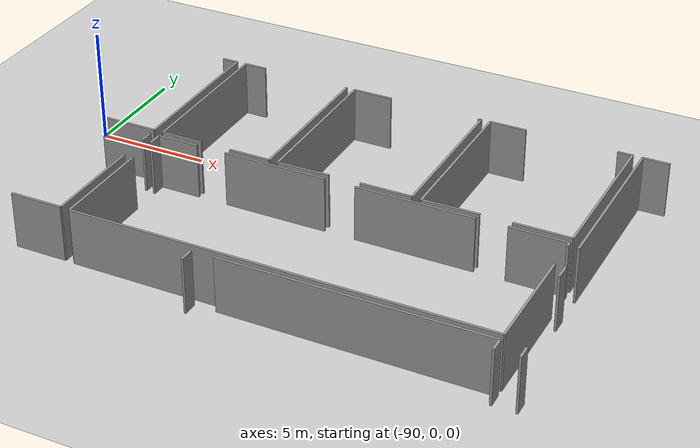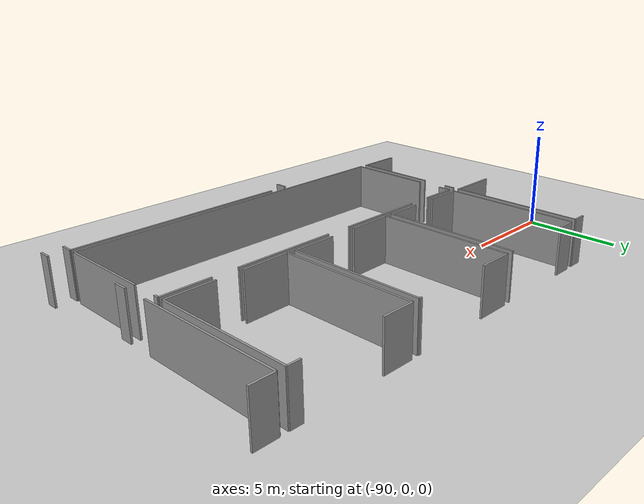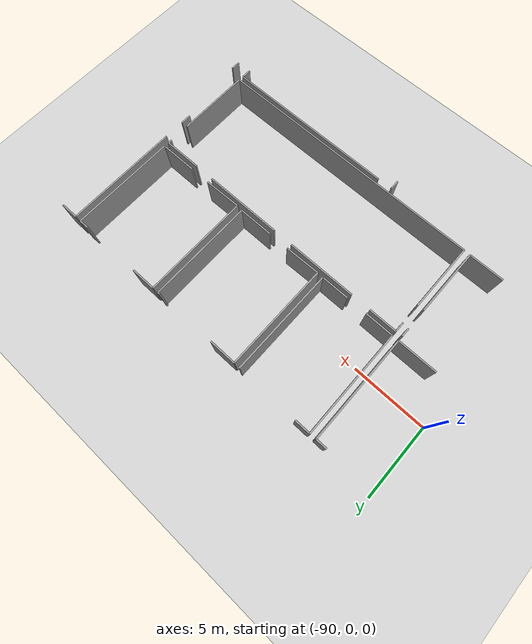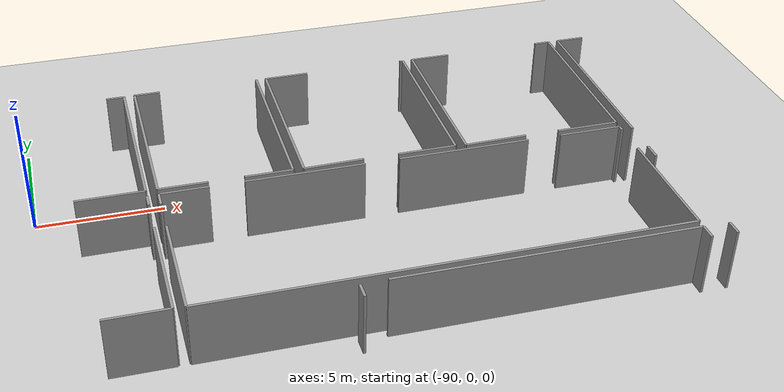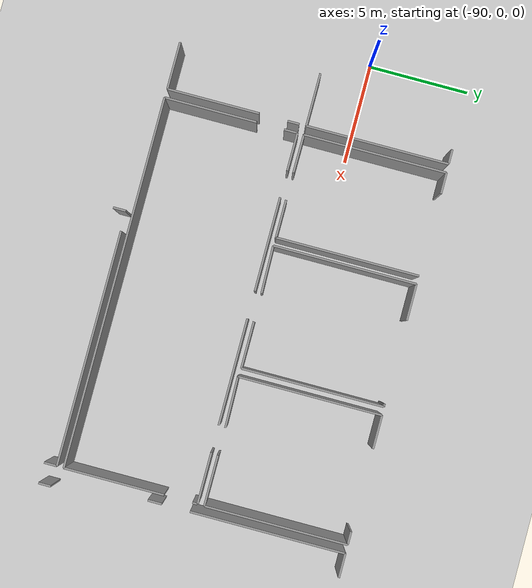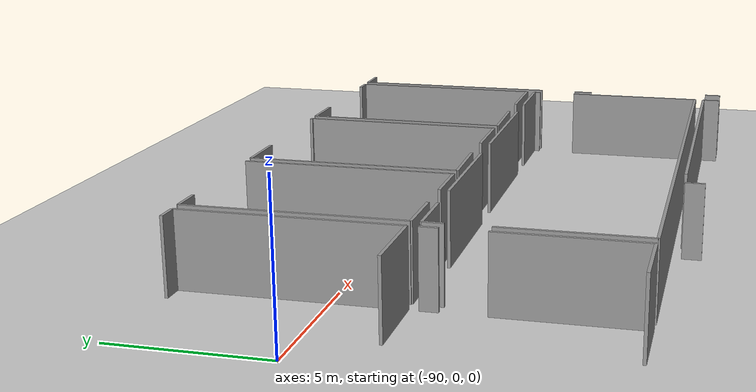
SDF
<sdf version="1.6">
 <world name="default">
  <model name="ground_plane">
   <static>1</static>
   <link name="link">
    <collision name="collision">
     <geometry><plane><normal>0 0 1</normal><size>100 100</size></plane></geometry>
     <surface><friction><ode><mu>100</mu><mu2>50</mu2></ode></friction></surface>
    </collision>
    <visual name="visual">
     <cast_shadows>0</cast_shadows>
     <geometry><plane><normal>0 0 1</normal><size>100 100</size></plane></geometry>
     <material>
      <script><uri>file://media/materials/scripts/gazebo.material</uri><name>Gazebo/Grey</name></script>
     </material>
    </visual>
   </link>
  </model>
  <model name="0510035341_A_40_1_103">
   <static>1</static>
   <link name="Wall_22">
    <collision name="Wall_22_Collision">
     <geometry><box><size>0.718176623706 0.1 2.5</size></box></geometry>
     <pose>0.359088311853 0 1.25 0 0 0</pose>
    </collision>
    <visual name="Wall_22_Visual">
     <pose>0.359088311853 0 1.25 0 0 0</pose>
     <geometry><box><size>0.718176623706 0.1 2.5</size></box></geometry>
     <material>
      <script><uri>file://media/materials/scripts/gazebo.material</uri><name>Gazebo/Grey</name></script>
      <ambient>1 1 1 1</ambient>
     </material>
    </visual>
    <pose>26.3556599581 -19.3194082915 0 0 0 0.0</pose>
   </link>
   <link name="Wall_23">
    <collision name="Wall_23_Collision">
     <geometry><box><size>7.02685543775 0.1 2.5</size></box></geometry>
     <pose>3.51342771887 0 1.25 0 0 0</pose>
    </collision>
    <visual name="Wall_23_Visual">
     <pose>3.51342771887 0 1.25 0 0 0</pose>
     <geometry><box><size>7.02685543775 0.1 2.5</size></box></geometry>
     <material>
      <script><uri>file://media/materials/scripts/gazebo.material</uri><name>Gazebo/Grey</name></script>
      <ambient>1 1 1 1</ambient>
     </material>
    </visual>
    <pose>27.0738365818 -19.3194082915 0 0 0 -1.57079632679</pose>
   </link>
   <link name="Wall_24">
    <collision name="Wall_24_Collision">
     <geometry><box><size>2.60402514126 0.1 2.5</size></box></geometry>
     <pose>1.30201257063 0 1.25 0 0 0</pose>
    </collision>
    <visual name="Wall_24_Visual">
     <pose>1.30201257063 0 1.25 0 0 0</pose>
     <geometry><box><size>2.60402514126 0.1 2.5</size></box></geometry>
     <material>
      <script><uri>file://media/materials/scripts/gazebo.material</uri><name>Gazebo/Grey</name></script>
      <ambient>1 1 1 1</ambient>
     </material>
    </visual>
    <pose>27.0738365818 -26.3462637293 0 0 0 3.14159265359</pose>
   </link>
   <link name="Wall_29">
    <collision name="Wall_29_Collision">
     <geometry><box><size>0.579518760714 0.1 2.5</size></box></geometry>
     <pose>0.289759380357 0 1.25 0 0 0</pose>
    </collision>
    <visual name="Wall_29_Visual">
     <pose>0.289759380357 0 1.25 0 0 0</pose>
     <geometry><box><size>0.579518760714 0.1 2.5</size></box></geometry>
     <material>
      <script><uri>file://media/materials/scripts/gazebo.material</uri><name>Gazebo/Grey</name></script>
      <ambient>1 1 1 1</ambient>
     </material>
    </visual>
    <pose>27.0794235287 -26.6873214399 0 0 0 -1.57079632679</pose>
   </link>
   <link name="Wall_30">
    <collision name="Wall_30_Collision">
     <geometry><box><size>4.54548917529 0.1 2.5</size></box></geometry>
     <pose>2.27274458765 0 1.25 0 0 0</pose>
    </collision>
    <visual name="Wall_30_Visual">
     <pose>2.27274458765 0 1.25 0 0 0</pose>
     <geometry><box><size>4.54548917529 0.1 2.5</size></box></geometry>
     <material>
      <script><uri>file://media/materials/scripts/gazebo.material</uri><name>Gazebo/Grey</name></script>
      <ambient>1 1 1 1</ambient>
     </material>
    </visual>
    <pose>27.0794235287 -28.6727191924 0 0 0 -1.57079632679</pose>
   </link>
   <link name="Wall_31">
    <collision name="Wall_31_Collision">
     <geometry><box><size>2.32797917593 0.1 2.5</size></box></geometry>
     <pose>1.16398958796 0 1.25 0 0 0</pose>
    </collision>
    <visual name="Wall_31_Visual">
     <pose>1.16398958796 0 1.25 0 0 0</pose>
     <geometry><box><size>2.32797917593 0.1 2.5</size></box></geometry>
     <material>
      <script><uri>file://media/materials/scripts/gazebo.material</uri><name>Gazebo/Grey</name></script>
      <ambient>1 1 1 1</ambient>
     </material>
    </visual>
    <pose>27.0794235287 -33.2182083677 0 0 0 3.14159265359</pose>
   </link>
   <link name="Wall_33">
    <collision name="Wall_33_Collision">
     <geometry><box><size>7.04640975176 0.1 2.5</size></box></geometry>
     <pose>3.52320487588 0 1.25 0 0 0</pose>
    </collision>
    <visual name="Wall_33_Visual">
     <pose>3.52320487588 0 1.25 0 0 0</pose>
     <geometry><box><size>7.04640975176 0.1 2.5</size></box></geometry>
     <material>
      <script><uri>file://media/materials/scripts/gazebo.material</uri><name>Gazebo/Grey</name></script>
      <ambient>1 1 1 1</ambient>
     </material>
    </visual>
    <pose>27.507840772 -26.3490572027 0 0 0 1.57079632679</pose>
   </link>
   <link name="Wall_34">
    <collision name="Wall_34_Collision">
     <geometry><box><size>1.03129960003 0.1 2.5</size></box></geometry>
     <pose>0.515649800013 0 1.25 0 0 0</pose>
    </collision>
    <visual name="Wall_34_Visual">
     <pose>0.515649800013 0 1.25 0 0 0</pose>
     <geometry><box><size>1.03129960003 0.1 2.5</size></box></geometry>
     <material>
      <script><uri>file://media/materials/scripts/gazebo.material</uri><name>Gazebo/Grey</name></script>
      <ambient>1 1 1 1</ambient>
     </material>
    </visual>
    <pose>27.507840772 -19.302647451 0 0 0 0.0</pose>
   </link>
   <link name="Wall_35">
    <collision name="Wall_35_Collision">
     <geometry><box><size>7.05656783696 0.1 2.5</size></box></geometry>
     <pose>3.52828391848 0 1.25 0 0 0</pose>
    </collision>
    <visual name="Wall_35_Visual">
     <pose>3.52828391848 0 1.25 0 0 0</pose>
     <geometry><box><size>7.05656783696 0.1 2.5</size></box></geometry>
     <material>
      <script><uri>file://media/materials/scripts/gazebo.material</uri><name>Gazebo/Grey</name></script>
      <ambient>1 1 1 1</ambient>
     </material>
    </visual>
    <pose>32.6122785855 -19.302647451 0 0 0 -1.57079632679</pose>
   </link>
   <link name="Wall_36">
    <collision name="Wall_36_Collision">
     <geometry><box><size>1.85689797473 0.1 2.5</size></box></geometry>
     <pose>0.928448987366 0 1.25 0 0 0</pose>
    </collision>
    <visual name="Wall_36_Visual">
     <pose>0.928448987366 0 1.25 0 0 0</pose>
     <geometry><box><size>1.85689797473 0.1 2.5</size></box></geometry>
     <material>
      <script><uri>file://media/materials/scripts/gazebo.material</uri><name>Gazebo/Grey</name></script>
      <ambient>1 1 1 1</ambient>
     </material>
    </visual>
    <pose>32.6122785855 -26.3592152879 0 0 0 3.14159265359</pose>
   </link>
   <link name="Wall_37">
    <collision name="Wall_37_Collision">
     <geometry><box><size>1.88765351466 0.1 2.5</size></box></geometry>
     <pose>0.943826757332 0 1.25 0 0 0</pose>
    </collision>
    <visual name="Wall_37_Visual">
     <pose>0.943826757332 0 1.25 0 0 0</pose>
     <geometry><box><size>1.88765351466 0.1 2.5</size></box></geometry>
     <material>
      <script><uri>file://media/materials/scripts/gazebo.material</uri><name>Gazebo/Grey</name></script>
      <ambient>1 1 1 1</ambient>
     </material>
    </visual>
    <pose>29.3954669545 -26.3592152879 0 0 0 3.1362112983</pose>
   </link>
   <link name="Wall_38">
    <collision name="Wall_38_Collision">
     <geometry><box><size>7.05453621992 0.1 2.5</size></box></geometry>
     <pose>3.52726810996 0 1.25 0 0 0</pose>
    </collision>
    <visual name="Wall_38_Visual">
     <pose>3.52726810996 0 1.25 0 0 0</pose>
     <geometry><box><size>7.05453621992 0.1 2.5</size></box></geometry>
     <material>
      <script><uri>file://media/materials/scripts/gazebo.material</uri><name>Gazebo/Grey</name></script>
      <ambient>1 1 1 1</ambient>
     </material>
    </visual>
    <pose>33.017586185 -26.3820709796 0 0 0 1.57079632679</pose>
   </link>
   <link name="Wall_39">
    <collision name="Wall_39_Collision">
     <geometry><box><size>1.78909275602 0.1 2.5</size></box></geometry>
     <pose>0.894546378008 0 1.25 0 0 0</pose>
    </collision>
    <visual name="Wall_39_Visual">
     <pose>0.894546378008 0 1.25 0 0 0</pose>
     <geometry><box><size>1.78909275602 0.1 2.5</size></box></geometry>
     <material>
      <script><uri>file://media/materials/scripts/gazebo.material</uri><name>Gazebo/Grey</name></script>
      <ambient>1 1 1 1</ambient>
     </material>
    </visual>
    <pose>33.017586185 -19.3275347597 0 0 0 0.0</pose>
   </link>
   <link name="Wall_40">
    <collision name="Wall_40_Collision">
     <geometry><box><size>0.141197384293 0.1 2.5</size></box></geometry>
     <pose>0.0705986921465 0 1.25 0 0 0</pose>
    </collision>
    <visual name="Wall_40_Visual">
     <pose>0.0705986921465 0 1.25 0 0 0</pose>
     <geometry><box><size>0.141197384293 0.1 2.5</size></box></geometry>
     <material>
      <script><uri>file://media/materials/scripts/gazebo.material</uri><name>Gazebo/Grey</name></script>
      <ambient>1 1 1 1</ambient>
     </material>
    </visual>
    <pose>38.9077518888 -19.3275347597 0 0 0 0.0</pose>
   </link>
   <link name="Wall_41">
    <collision name="Wall_41_Collision">
     <geometry><box><size>7.00704717161 0.1 2.5</size></box></geometry>
     <pose>3.5035235858 0 1.25 0 0 0</pose>
    </collision>
    <visual name="Wall_41_Visual">
     <pose>3.5035235858 0 1.25 0 0 0</pose>
     <geometry><box><size>7.00704717161 0.1 2.5</size></box></geometry>
     <material>
      <script><uri>file://media/materials/scripts/gazebo.material</uri><name>Gazebo/Grey</name></script>
      <ambient>1 1 1 1</ambient>
     </material>
    </visual>
    <pose>39.0489492731 -19.3275347597 0 0 0 -1.57079632679</pose>
   </link>
   <link name="Wall_42">
    <collision name="Wall_42_Collision">
     <geometry><box><size>2.2990286331 0.1 2.5</size></box></geometry>
     <pose>1.14951431655 0 1.25 0 0 0</pose>
    </collision>
    <visual name="Wall_42_Visual">
     <pose>1.14951431655 0 1.25 0 0 0</pose>
     <geometry><box><size>2.2990286331 0.1 2.5</size></box></geometry>
     <material>
      <script><uri>file://media/materials/scripts/gazebo.material</uri><name>Gazebo/Grey</name></script>
      <ambient>1 1 1 1</ambient>
     </material>
    </visual>
    <pose>39.0489492731 -26.3345819313 0 0 0 3.14159265359</pose>
   </link>
   <link name="Wall_43">
    <collision name="Wall_43_Collision">
     <geometry><box><size>2.34902937764 0.1 2.5</size></box></geometry>
     <pose>1.17451468882 0 1.25 0 0 0</pose>
    </collision>
    <visual name="Wall_43_Visual">
     <pose>1.17451468882 0 1.25 0 0 0</pose>
     <geometry><box><size>2.34902937764 0.1 2.5</size></box></geometry>
     <material>
      <script><uri>file://media/materials/scripts/gazebo.material</uri><name>Gazebo/Grey</name></script>
      <ambient>1 1 1 1</ambient>
     </material>
    </visual>
    <pose>35.3661354835 -26.3345819313 0 0 0 -3.12137482056</pose>
   </link>
   <link name="Wall_44">
    <collision name="Wall_44_Collision">
     <geometry><box><size>7.07307472541 0.1 2.5</size></box></geometry>
     <pose>3.53653736271 0 1.25 0 0 0</pose>
    </collision>
    <visual name="Wall_44_Visual">
     <pose>3.53653736271 0 1.25 0 0 0</pose>
     <geometry><box><size>7.07307472541 0.1 2.5</size></box></geometry>
     <material>
      <script><uri>file://media/materials/scripts/gazebo.material</uri><name>Gazebo/Grey</name></script>
      <ambient>1 1 1 1</ambient>
     </material>
    </visual>
    <pose>39.4639070535 -26.3841025967 0 0 0 1.57079632679</pose>
   </link>
   <link name="Wall_45">
    <collision name="Wall_45_Collision">
     <geometry><box><size>1.64383213764 0.1 2.5</size></box></geometry>
     <pose>0.821916068821 0 1.25 0 0 0</pose>
    </collision>
    <visual name="Wall_45_Visual">
     <pose>0.821916068821 0 1.25 0 0 0</pose>
     <geometry><box><size>1.64383213764 0.1 2.5</size></box></geometry>
     <material>
      <script><uri>file://media/materials/scripts/gazebo.material</uri><name>Gazebo/Grey</name></script>
      <ambient>1 1 1 1</ambient>
     </material>
    </visual>
    <pose>39.4639070535 -19.3110278712 0 0 0 0.0</pose>
   </link>
   <link name="Wall_46">
    <collision name="Wall_46_Collision">
     <geometry><box><size>0.639197511269 0.1 2.5</size></box></geometry>
     <pose>0.319598755635 0 1.25 0 0 0</pose>
    </collision>
    <visual name="Wall_46_Visual">
     <pose>0.319598755635 0 1.25 0 0 0</pose>
     <geometry><box><size>0.639197511269 0.1 2.5</size></box></geometry>
     <material>
      <script><uri>file://media/materials/scripts/gazebo.material</uri><name>Gazebo/Grey</name></script>
      <ambient>1 1 1 1</ambient>
     </material>
    </visual>
    <pose>45.1506571011 -19.3110278712 0 0 0 0.0</pose>
   </link>
   <link name="Wall_47">
    <collision name="Wall_47_Collision">
     <geometry><box><size>7.02355406006 0.1 2.5</size></box></geometry>
     <pose>3.51177703003 0 1.25 0 0 0</pose>
    </collision>
    <visual name="Wall_47_Visual">
     <pose>3.51177703003 0 1.25 0 0 0</pose>
     <geometry><box><size>7.02355406006 0.1 2.5</size></box></geometry>
     <material>
      <script><uri>file://media/materials/scripts/gazebo.material</uri><name>Gazebo/Grey</name></script>
      <ambient>1 1 1 1</ambient>
     </material>
    </visual>
    <pose>45.7898546124 -19.3110278712 0 0 0 -1.57079632679</pose>
   </link>
   <link name="Wall_48">
    <collision name="Wall_48_Collision">
     <geometry><box><size>2.47781093264 0.1 2.5</size></box></geometry>
     <pose>1.23890546632 0 1.25 0 0 0</pose>
    </collision>
    <visual name="Wall_48_Visual">
     <pose>1.23890546632 0 1.25 0 0 0</pose>
     <geometry><box><size>2.47781093264 0.1 2.5</size></box></geometry>
     <material>
      <script><uri>file://media/materials/scripts/gazebo.material</uri><name>Gazebo/Grey</name></script>
      <ambient>1 1 1 1</ambient>
     </material>
    </visual>
    <pose>45.7898546124 -26.3345819313 0 0 0 3.14159265359</pose>
   </link>
   <link name="Wall_49">
    <collision name="Wall_49_Collision">
     <geometry><box><size>2.49100081891 0.1 2.5</size></box></geometry>
     <pose>1.24550040946 0 1.25 0 0 0</pose>
    </collision>
    <visual name="Wall_49_Visual">
     <pose>1.24550040946 0 1.25 0 0 0</pose>
     <geometry><box><size>2.49100081891 0.1 2.5</size></box></geometry>
     <material>
      <script><uri>file://media/materials/scripts/gazebo.material</uri><name>Gazebo/Grey</name></script>
      <ambient>1 1 1 1</ambient>
     </material>
    </visual>
    <pose>41.9544155927 -26.3345819313 0 0 0 -3.12171151691</pose>
   </link>
   <link name="Wall_50">
    <collision name="Wall_50_Collision">
     <geometry><box><size>0.697098596914 0.1 2.5</size></box></geometry>
     <pose>0.348549298457 0 1.25 0 0 0</pose>
    </collision>
    <visual name="Wall_50_Visual">
     <pose>0.348549298457 0 1.25 0 0 0</pose>
     <geometry><box><size>0.697098596914 0.1 2.5</size></box></geometry>
     <material>
      <script><uri>file://media/materials/scripts/gazebo.material</uri><name>Gazebo/Grey</name></script>
      <ambient>1 1 1 1</ambient>
     </material>
    </visual>
    <pose>46.2210653292 -28.9883816901 0 0 0 1.57079632679</pose>
   </link>
   <link name="Wall_51">
    <collision name="Wall_51_Collision">
     <geometry><box><size>7.6084058155 0.1 2.5</size></box></geometry>
     <pose>3.80420290775 0 1.25 0 0 0</pose>
    </collision>
    <visual name="Wall_51_Visual">
     <pose>3.80420290775 0 1.25 0 0 0</pose>
     <geometry><box><size>7.6084058155 0.1 2.5</size></box></geometry>
     <material>
      <script><uri>file://media/materials/scripts/gazebo.material</uri><name>Gazebo/Grey</name></script>
      <ambient>1 1 1 1</ambient>
     </material>
    </visual>
    <pose>46.2210653292 -26.9184178782 0 0 0 1.57079632679</pose>
   </link>
   <link name="Wall_52">
    <collision name="Wall_52_Collision">
     <geometry><box><size>1.17173512793 0.1 2.5</size></box></geometry>
     <pose>0.585867563964 0 1.25 0 0 0</pose>
    </collision>
    <visual name="Wall_52_Visual">
     <pose>0.585867563964 0 1.25 0 0 0</pose>
     <geometry><box><size>1.17173512793 0.1 2.5</size></box></geometry>
     <material>
      <script><uri>file://media/materials/scripts/gazebo.material</uri><name>Gazebo/Grey</name></script>
      <ambient>1 1 1 1</ambient>
     </material>
    </visual>
    <pose>46.2210653292 -19.3100120627 0 0 0 0.0</pose>
   </link>
   <link name="Wall_57">
    <collision name="Wall_57_Collision">
     <geometry><box><size>4.55717097327 0.1 2.5</size></box></geometry>
     <pose>2.27858548664 0 1.25 0 0 0</pose>
    </collision>
    <visual name="Wall_57_Visual">
     <pose>2.27858548664 0 1.25 0 0 0</pose>
     <geometry><box><size>4.55717097327 0.1 2.5</size></box></geometry>
     <material>
      <script><uri>file://media/materials/scripts/gazebo.material</uri><name>Gazebo/Grey</name></script>
      <ambient>1 1 1 1</ambient>
     </material>
    </visual>
    <pose>27.5126658625 -33.2400482509 0 0 0 1.57079632679</pose>
   </link>
   <link name="Wall_58">
    <collision name="Wall_58_Collision">
     <geometry><box><size>0.655958351851 0.1 2.5</size></box></geometry>
     <pose>0.327979175925 0 1.25 0 0 0</pose>
    </collision>
    <visual name="Wall_58_Visual">
     <pose>0.327979175925 0 1.25 0 0 0</pose>
     <geometry><box><size>0.655958351851 0.1 2.5</size></box></geometry>
     <material>
      <script><uri>file://media/materials/scripts/gazebo.material</uri><name>Gazebo/Grey</name></script>
      <ambient>1 1 1 1</ambient>
     </material>
    </visual>
    <pose>27.5126658625 -27.322201765 0 0 0 1.57079632679</pose>
   </link>
   <link name="Wall_59">
    <collision name="Wall_59_Collision">
     <geometry><box><size>1.86477049076 0.1 2.5</size></box></geometry>
     <pose>0.932385245381 0 1.25 0 0 0</pose>
    </collision>
    <visual name="Wall_59_Visual">
     <pose>0.932385245381 0 1.25 0 0 0</pose>
     <geometry><box><size>1.86477049076 0.1 2.5</size></box></geometry>
     <material>
      <script><uri>file://media/materials/scripts/gazebo.material</uri><name>Gazebo/Grey</name></script>
      <ambient>1 1 1 1</ambient>
     </material>
    </visual>
    <pose>27.5126658625 -26.6662434131 0 0 0 0.0</pose>
   </link>
   <link name="Wall_60">
    <collision name="Wall_60_Collision">
     <geometry><box><size>4.63234080376 0.1 2.5</size></box></geometry>
     <pose>2.31617040188 0 1.25 0 0 0</pose>
    </collision>
    <visual name="Wall_60_Visual">
     <pose>2.31617040188 0 1.25 0 0 0</pose>
     <geometry><box><size>4.63234080376 0.1 2.5</size></box></geometry>
     <material>
      <script><uri>file://media/materials/scripts/gazebo.material</uri><name>Gazebo/Grey</name></script>
      <ambient>1 1 1 1</ambient>
     </material>
    </visual>
    <pose>30.7056059933 -26.6662434131 0 0 0 0.0</pose>
   </link>
   <link name="Wall_61">
    <collision name="Wall_61_Collision">
     <geometry><box><size>5.23344549552 0.1 2.5</size></box></geometry>
     <pose>2.61672274776 0 1.25 0 0 0</pose>
    </collision>
    <visual name="Wall_61_Visual">
     <pose>2.61672274776 0 1.25 0 0 0</pose>
     <geometry><box><size>5.23344549552 0.1 2.5</size></box></geometry>
     <material>
      <script><uri>file://media/materials/scripts/gazebo.material</uri><name>Gazebo/Grey</name></script>
      <ambient>1 1 1 1</ambient>
     </material>
    </visual>
    <pose>36.6915116501 -26.6662434131 0 0 0 0.0</pose>
   </link>
   <link name="Wall_62">
    <collision name="Wall_62_Collision">
     <geometry><box><size>2.51260237445 0.1 2.5</size></box></geometry>
     <pose>1.25630118723 0 1.25 0 0 0</pose>
    </collision>
    <visual name="Wall_62_Visual">
     <pose>1.25630118723 0 1.25 0 0 0</pose>
     <geometry><box><size>2.51260237445 0.1 2.5</size></box></geometry>
     <material>
      <script><uri>file://media/materials/scripts/gazebo.material</uri><name>Gazebo/Grey</name></script>
      <ambient>1 1 1 1</ambient>
     </material>
    </visual>
    <pose>43.2696336741 -26.6662434131 0 0 0 0.0</pose>
   </link>
   <link name="Wall_63">
    <collision name="Wall_63_Collision">
     <geometry><box><size>0.248365183163 0.1 2.5</size></box></geometry>
     <pose>0.124182591581 0 1.25 0 0 0</pose>
    </collision>
    <visual name="Wall_63_Visual">
     <pose>0.124182591581 0 1.25 0 0 0</pose>
     <geometry><box><size>0.248365183163 0.1 2.5</size></box></geometry>
     <material>
      <script><uri>file://media/materials/scripts/gazebo.material</uri><name>Gazebo/Grey</name></script>
      <ambient>1 1 1 1</ambient>
     </material>
    </visual>
    <pose>45.7822360485 -26.6662434131 0 0 0 -1.57079632679</pose>
   </link>
   <link name="Wall_64">
    <collision name="Wall_64_Collision">
     <geometry><box><size>4.93098850867 0.1 2.5</size></box></geometry>
     <pose>2.46549425433 0 1.25 0 0 0</pose>
    </collision>
    <visual name="Wall_64_Visual">
     <pose>2.46549425433 0 1.25 0 0 0</pose>
     <geometry><box><size>4.93098850867 0.1 2.5</size></box></geometry>
     <material>
      <script><uri>file://media/materials/scripts/gazebo.material</uri><name>Gazebo/Grey</name></script>
      <ambient>1 1 1 1</ambient>
     </material>
    </visual>
    <pose>45.7822360485 -28.3034727954 0 0 0 -1.57079632679</pose>
   </link>
   <link name="Wall_65">
    <collision name="Wall_65_Collision">
     <geometry><box><size>18.2695710403 0.1 2.5</size></box></geometry>
     <pose>9.13478552014 0 1.25 0 0 0</pose>
    </collision>
    <visual name="Wall_65_Visual">
     <pose>9.13478552014 0 1.25 0 0 0</pose>
     <geometry><box><size>18.2695710403 0.1 2.5</size></box></geometry>
     <material>
      <script><uri>file://media/materials/scripts/gazebo.material</uri><name>Gazebo/Grey</name></script>
      <ambient>1 1 1 1</ambient>
     </material>
    </visual>
    <pose>45.7822360485 -33.234461304 0 0 0 -3.14128684745</pose>
   </link>
   <link name="Wall_256">
    <collision name="Wall_256_Collision">
     <geometry><box><size>0.630817090978 0.1 2.5</size></box></geometry>
     <pose>0.315408545489 0 1.25 0 0 0</pose>
    </collision>
    <visual name="Wall_256_Visual">
     <pose>0.315408545489 0 1.25 0 0 0</pose>
     <geometry><box><size>0.630817090978 0.1 2.5</size></box></geometry>
     <material>
      <script><uri>file://media/materials/scripts/gazebo.material</uri><name>Gazebo/Grey</name></script>
      <ambient>1 1 1 1</ambient>
     </material>
    </visual>
    <pose>33.238270586 -33.5973588978 0 0 0 -1.57079632679</pose>
   </link>
   <link name="Wall_259">
    <collision name="Wall_259_Collision">
     <geometry><box><size>11.5487270649 0.1 2.5</size></box></geometry>
     <pose>5.77436353247 0 1.25 0 0 0</pose>
    </collision>
    <visual name="Wall_259_Visual">
     <pose>5.77436353247 0 1.25 0 0 0</pose>
     <geometry><box><size>11.5487270649 0.1 2.5</size></box></geometry>
     <material>
      <script><uri>file://media/materials/scripts/gazebo.material</uri><name>Gazebo/Grey</name></script>
      <ambient>1 1 1 1</ambient>
     </material>
    </visual>
    <pose>34.2263983239 -33.5694241635 0 0 0 0.0</pose>
   </link>
   <link name="Wall_260">
    <collision name="Wall_260_Collision">
     <geometry><box><size>0.627769665418 0.1 2.5</size></box></geometry>
     <pose>0.313884832709 0 1.25 0 0 0</pose>
    </collision>
    <visual name="Wall_260_Visual">
     <pose>0.313884832709 0 1.25 0 0 0</pose>
     <geometry><box><size>0.627769665418 0.1 2.5</size></box></geometry>
     <material>
      <script><uri>file://media/materials/scripts/gazebo.material</uri><name>Gazebo/Grey</name></script>
      <ambient>1 1 1 1</ambient>
     </material>
    </visual>
    <pose>45.7751253889 -33.5694241635 0 0 0 -1.57079632679</pose>
   </link>
   <link name="Wall_262">
    <collision name="Wall_262_Collision">
     <geometry><box><size>0.601358643896 0.1 2.5</size></box></geometry>
     <pose>0.300679321948 0 1.25 0 0 0</pose>
    </collision>
    <visual name="Wall_262_Visual">
     <pose>0.300679321948 0 1.25 0 0 0</pose>
     <geometry><box><size>0.601358643896 0.1 2.5</size></box></geometry>
     <material>
      <script><uri>file://media/materials/scripts/gazebo.material</uri><name>Gazebo/Grey</name></script>
      <ambient>1 1 1 1</ambient>
     </material>
    </visual>
    <pose>46.7769665418 -34.197193829 0 0 0 1.57079632679</pose>
   </link>
   <pose>-112.9 24.0688781665 0 0 0 0</pose>
  </model>
 </world>
</sdf>
